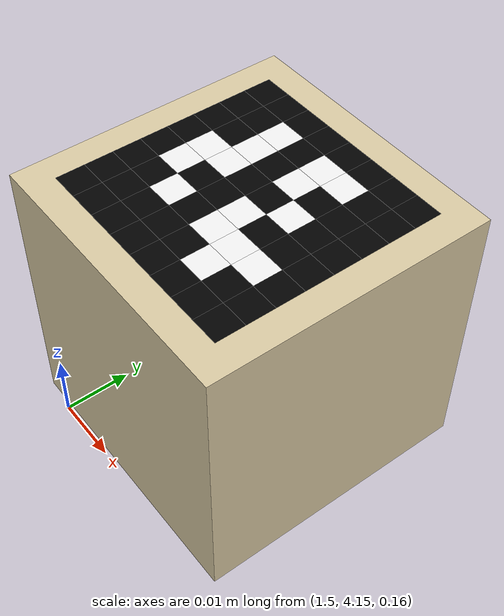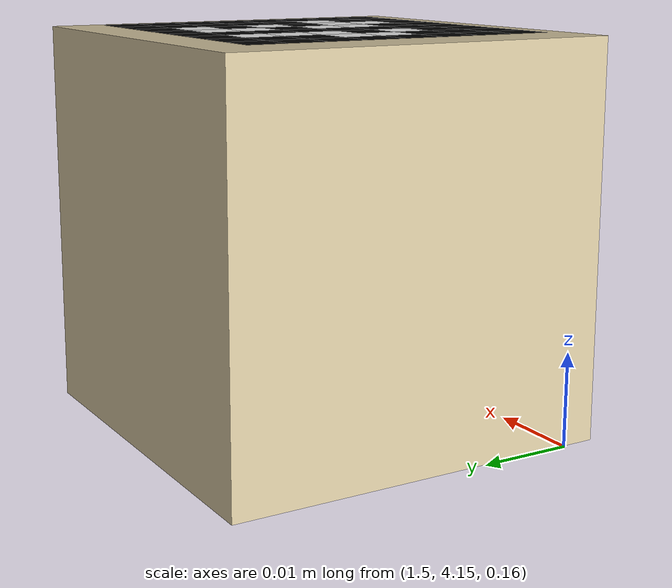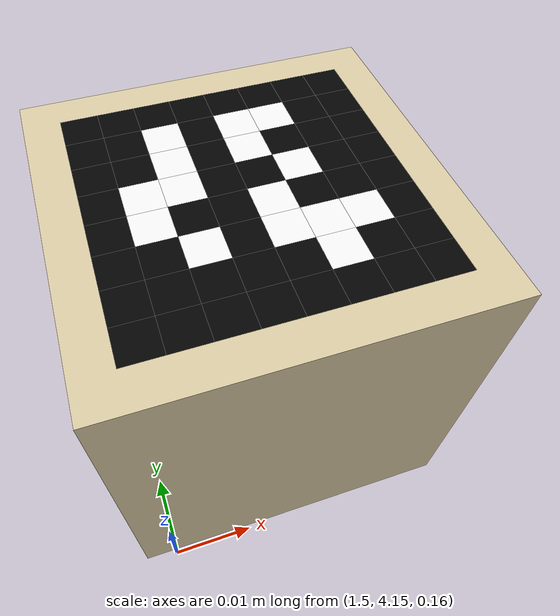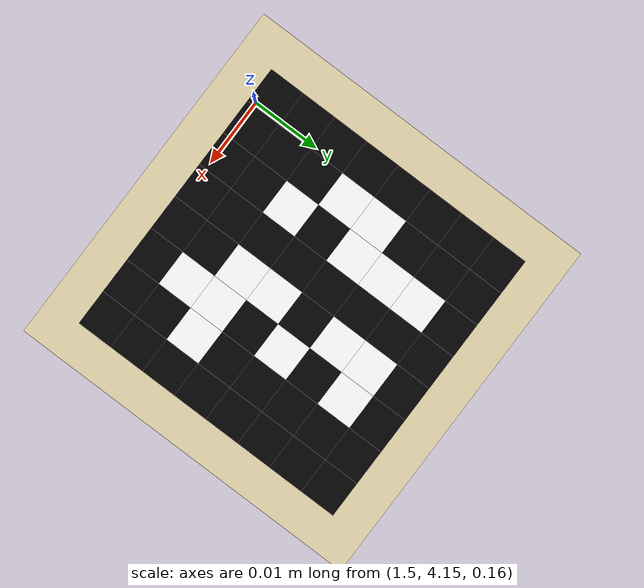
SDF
<sdf version="1.9">
 <world name="arena">
  <model name="cube_12">
   <pose>1.51626 4.16994 0.18200 0 0 0</pose>
   <link name="body">
    <inertial>
     <mass>0.04</mass>
     <inertia>
      <ixx>0.000010667</ixx>
      <iyy>0.000010667</iyy>
      <izz>0.000010667</izz>
      <ixy>0</ixy>
      <ixz>0</ixz>
      <iyz>0</iyz>
     </inertia>
    </inertial>
    <collision name="cube">
     <geometry><box><size>0.04 0.04 0.04</size></box></geometry>
     <surface><friction><ode><mu>1.2</mu><mu2>1.2</mu2></ode></friction></surface>
    </collision>
    <visual name="cube_appearance">
     <geometry><box><size>0.04 0.04 0.04</size></box></geometry>
     <material><ambient>0.85 0.79 0.64 1</ambient><diffuse>0.85 0.79 0.64 1</diffuse></material>
    </visual>
    <visual name="tag_0_0">
     <pose>-0.0140 0.0140 0.0202 0 0 0</pose>
     <geometry><plane><normal>0 0 1</normal><size>0.004 0.004</size></plane></geometry>
     <material><ambient>0.01 0.01 0.01 1</ambient><diffuse>0.01 0.01 0.01 1</diffuse></material>
    </visual>
    <visual name="tag_0_1">
     <pose>-0.0100 0.0140 0.0202 0 0 0</pose>
     <geometry><plane><normal>0 0 1</normal><size>0.004 0.004</size></plane></geometry>
     <material><ambient>0.01 0.01 0.01 1</ambient><diffuse>0.01 0.01 0.01 1</diffuse></material>
    </visual>
    <visual name="tag_0_2">
     <pose>-0.0060 0.0140 0.0202 0 0 0</pose>
     <geometry><plane><normal>0 0 1</normal><size>0.004 0.004</size></plane></geometry>
     <material><ambient>0.01 0.01 0.01 1</ambient><diffuse>0.01 0.01 0.01 1</diffuse></material>
    </visual>
    <visual name="tag_0_3">
     <pose>-0.0020 0.0140 0.0202 0 0 0</pose>
     <geometry><plane><normal>0 0 1</normal><size>0.004 0.004</size></plane></geometry>
     <material><ambient>0.01 0.01 0.01 1</ambient><diffuse>0.01 0.01 0.01 1</diffuse></material>
    </visual>
    <visual name="tag_0_4">
     <pose>0.0020 0.0140 0.0202 0 0 0</pose>
     <geometry><plane><normal>0 0 1</normal><size>0.004 0.004</size></plane></geometry>
     <material><ambient>0.01 0.01 0.01 1</ambient><diffuse>0.01 0.01 0.01 1</diffuse></material>
    </visual>
    <visual name="tag_0_5">
     <pose>0.0060 0.0140 0.0202 0 0 0</pose>
     <geometry><plane><normal>0 0 1</normal><size>0.004 0.004</size></plane></geometry>
     <material><ambient>0.01 0.01 0.01 1</ambient><diffuse>0.01 0.01 0.01 1</diffuse></material>
    </visual>
    <visual name="tag_0_6">
     <pose>0.0100 0.0140 0.0202 0 0 0</pose>
     <geometry><plane><normal>0 0 1</normal><size>0.004 0.004</size></plane></geometry>
     <material><ambient>0.01 0.01 0.01 1</ambient><diffuse>0.01 0.01 0.01 1</diffuse></material>
    </visual>
    <visual name="tag_0_7">
     <pose>0.0140 0.0140 0.0202 0 0 0</pose>
     <geometry><plane><normal>0 0 1</normal><size>0.004 0.004</size></plane></geometry>
     <material><ambient>0.01 0.01 0.01 1</ambient><diffuse>0.01 0.01 0.01 1</diffuse></material>
    </visual>
    <visual name="tag_1_0">
     <pose>-0.0140 0.0100 0.0202 0 0 0</pose>
     <geometry><plane><normal>0 0 1</normal><size>0.004 0.004</size></plane></geometry>
     <material><ambient>0.01 0.01 0.01 1</ambient><diffuse>0.01 0.01 0.01 1</diffuse></material>
    </visual>
    <visual name="tag_1_1">
     <pose>-0.0100 0.0100 0.0202 0 0 0</pose>
     <geometry><plane><normal>0 0 1</normal><size>0.004 0.004</size></plane></geometry>
     <material><ambient>0.01 0.01 0.01 1</ambient><diffuse>0.01 0.01 0.01 1</diffuse></material>
    </visual>
    <visual name="tag_1_2">
     <pose>-0.0060 0.0100 0.0202 0 0 0</pose>
     <geometry><plane><normal>0 0 1</normal><size>0.004 0.004</size></plane></geometry>
     <material><ambient>0.95 0.95 0.95 1</ambient><diffuse>0.95 0.95 0.95 1</diffuse></material>
    </visual>
    <visual name="tag_1_3">
     <pose>-0.0020 0.0100 0.0202 0 0 0</pose>
     <geometry><plane><normal>0 0 1</normal><size>0.004 0.004</size></plane></geometry>
     <material><ambient>0.01 0.01 0.01 1</ambient><diffuse>0.01 0.01 0.01 1</diffuse></material>
    </visual>
    <visual name="tag_1_4">
     <pose>0.0020 0.0100 0.0202 0 0 0</pose>
     <geometry><plane><normal>0 0 1</normal><size>0.004 0.004</size></plane></geometry>
     <material><ambient>0.95 0.95 0.95 1</ambient><diffuse>0.95 0.95 0.95 1</diffuse></material>
    </visual>
    <visual name="tag_1_5">
     <pose>0.0060 0.0100 0.0202 0 0 0</pose>
     <geometry><plane><normal>0 0 1</normal><size>0.004 0.004</size></plane></geometry>
     <material><ambient>0.95 0.95 0.95 1</ambient><diffuse>0.95 0.95 0.95 1</diffuse></material>
    </visual>
    <visual name="tag_1_6">
     <pose>0.0100 0.0100 0.0202 0 0 0</pose>
     <geometry><plane><normal>0 0 1</normal><size>0.004 0.004</size></plane></geometry>
     <material><ambient>0.01 0.01 0.01 1</ambient><diffuse>0.01 0.01 0.01 1</diffuse></material>
    </visual>
    <visual name="tag_1_7">
     <pose>0.0140 0.0100 0.0202 0 0 0</pose>
     <geometry><plane><normal>0 0 1</normal><size>0.004 0.004</size></plane></geometry>
     <material><ambient>0.01 0.01 0.01 1</ambient><diffuse>0.01 0.01 0.01 1</diffuse></material>
    </visual>
    <visual name="tag_2_0">
     <pose>-0.0140 0.0060 0.0202 0 0 0</pose>
     <geometry><plane><normal>0 0 1</normal><size>0.004 0.004</size></plane></geometry>
     <material><ambient>0.01 0.01 0.01 1</ambient><diffuse>0.01 0.01 0.01 1</diffuse></material>
    </visual>
    <visual name="tag_2_1">
     <pose>-0.0100 0.0060 0.0202 0 0 0</pose>
     <geometry><plane><normal>0 0 1</normal><size>0.004 0.004</size></plane></geometry>
     <material><ambient>0.01 0.01 0.01 1</ambient><diffuse>0.01 0.01 0.01 1</diffuse></material>
    </visual>
    <visual name="tag_2_2">
     <pose>-0.0060 0.0060 0.0202 0 0 0</pose>
     <geometry><plane><normal>0 0 1</normal><size>0.004 0.004</size></plane></geometry>
     <material><ambient>0.95 0.95 0.95 1</ambient><diffuse>0.95 0.95 0.95 1</diffuse></material>
    </visual>
    <visual name="tag_2_3">
     <pose>-0.0020 0.0060 0.0202 0 0 0</pose>
     <geometry><plane><normal>0 0 1</normal><size>0.004 0.004</size></plane></geometry>
     <material><ambient>0.01 0.01 0.01 1</ambient><diffuse>0.01 0.01 0.01 1</diffuse></material>
    </visual>
    <visual name="tag_2_4">
     <pose>0.0020 0.0060 0.0202 0 0 0</pose>
     <geometry><plane><normal>0 0 1</normal><size>0.004 0.004</size></plane></geometry>
     <material><ambient>0.95 0.95 0.95 1</ambient><diffuse>0.95 0.95 0.95 1</diffuse></material>
    </visual>
    <visual name="tag_2_5">
     <pose>0.0060 0.0060 0.0202 0 0 0</pose>
     <geometry><plane><normal>0 0 1</normal><size>0.004 0.004</size></plane></geometry>
     <material><ambient>0.01 0.01 0.01 1</ambient><diffuse>0.01 0.01 0.01 1</diffuse></material>
    </visual>
    <visual name="tag_2_6">
     <pose>0.0100 0.0060 0.0202 0 0 0</pose>
     <geometry><plane><normal>0 0 1</normal><size>0.004 0.004</size></plane></geometry>
     <material><ambient>0.01 0.01 0.01 1</ambient><diffuse>0.01 0.01 0.01 1</diffuse></material>
    </visual>
    <visual name="tag_2_7">
     <pose>0.0140 0.0060 0.0202 0 0 0</pose>
     <geometry><plane><normal>0 0 1</normal><size>0.004 0.004</size></plane></geometry>
     <material><ambient>0.01 0.01 0.01 1</ambient><diffuse>0.01 0.01 0.01 1</diffuse></material>
    </visual>
    <visual name="tag_3_0">
     <pose>-0.0140 0.0020 0.0202 0 0 0</pose>
     <geometry><plane><normal>0 0 1</normal><size>0.004 0.004</size></plane></geometry>
     <material><ambient>0.01 0.01 0.01 1</ambient><diffuse>0.01 0.01 0.01 1</diffuse></material>
    </visual>
    <visual name="tag_3_1">
     <pose>-0.0100 0.0020 0.0202 0 0 0</pose>
     <geometry><plane><normal>0 0 1</normal><size>0.004 0.004</size></plane></geometry>
     <material><ambient>0.95 0.95 0.95 1</ambient><diffuse>0.95 0.95 0.95 1</diffuse></material>
    </visual>
    <visual name="tag_3_2">
     <pose>-0.0060 0.0020 0.0202 0 0 0</pose>
     <geometry><plane><normal>0 0 1</normal><size>0.004 0.004</size></plane></geometry>
     <material><ambient>0.95 0.95 0.95 1</ambient><diffuse>0.95 0.95 0.95 1</diffuse></material>
    </visual>
    <visual name="tag_3_3">
     <pose>-0.0020 0.0020 0.0202 0 0 0</pose>
     <geometry><plane><normal>0 0 1</normal><size>0.004 0.004</size></plane></geometry>
     <material><ambient>0.01 0.01 0.01 1</ambient><diffuse>0.01 0.01 0.01 1</diffuse></material>
    </visual>
    <visual name="tag_3_4">
     <pose>0.0020 0.0020 0.0202 0 0 0</pose>
     <geometry><plane><normal>0 0 1</normal><size>0.004 0.004</size></plane></geometry>
     <material><ambient>0.01 0.01 0.01 1</ambient><diffuse>0.01 0.01 0.01 1</diffuse></material>
    </visual>
    <visual name="tag_3_5">
     <pose>0.0060 0.0020 0.0202 0 0 0</pose>
     <geometry><plane><normal>0 0 1</normal><size>0.004 0.004</size></plane></geometry>
     <material><ambient>0.95 0.95 0.95 1</ambient><diffuse>0.95 0.95 0.95 1</diffuse></material>
    </visual>
    <visual name="tag_3_6">
     <pose>0.0100 0.0020 0.0202 0 0 0</pose>
     <geometry><plane><normal>0 0 1</normal><size>0.004 0.004</size></plane></geometry>
     <material><ambient>0.01 0.01 0.01 1</ambient><diffuse>0.01 0.01 0.01 1</diffuse></material>
    </visual>
    <visual name="tag_3_7">
     <pose>0.0140 0.0020 0.0202 0 0 0</pose>
     <geometry><plane><normal>0 0 1</normal><size>0.004 0.004</size></plane></geometry>
     <material><ambient>0.01 0.01 0.01 1</ambient><diffuse>0.01 0.01 0.01 1</diffuse></material>
    </visual>
    <visual name="tag_4_0">
     <pose>-0.0140 -0.0020 0.0202 0 0 0</pose>
     <geometry><plane><normal>0 0 1</normal><size>0.004 0.004</size></plane></geometry>
     <material><ambient>0.01 0.01 0.01 1</ambient><diffuse>0.01 0.01 0.01 1</diffuse></material>
    </visual>
    <visual name="tag_4_1">
     <pose>-0.0100 -0.0020 0.0202 0 0 0</pose>
     <geometry><plane><normal>0 0 1</normal><size>0.004 0.004</size></plane></geometry>
     <material><ambient>0.95 0.95 0.95 1</ambient><diffuse>0.95 0.95 0.95 1</diffuse></material>
    </visual>
    <visual name="tag_4_2">
     <pose>-0.0060 -0.0020 0.0202 0 0 0</pose>
     <geometry><plane><normal>0 0 1</normal><size>0.004 0.004</size></plane></geometry>
     <material><ambient>0.01 0.01 0.01 1</ambient><diffuse>0.01 0.01 0.01 1</diffuse></material>
    </visual>
    <visual name="tag_4_3">
     <pose>-0.0020 -0.0020 0.0202 0 0 0</pose>
     <geometry><plane><normal>0 0 1</normal><size>0.004 0.004</size></plane></geometry>
     <material><ambient>0.01 0.01 0.01 1</ambient><diffuse>0.01 0.01 0.01 1</diffuse></material>
    </visual>
    <visual name="tag_4_4">
     <pose>0.0020 -0.0020 0.0202 0 0 0</pose>
     <geometry><plane><normal>0 0 1</normal><size>0.004 0.004</size></plane></geometry>
     <material><ambient>0.95 0.95 0.95 1</ambient><diffuse>0.95 0.95 0.95 1</diffuse></material>
    </visual>
    <visual name="tag_4_5">
     <pose>0.0060 -0.0020 0.0202 0 0 0</pose>
     <geometry><plane><normal>0 0 1</normal><size>0.004 0.004</size></plane></geometry>
     <material><ambient>0.01 0.01 0.01 1</ambient><diffuse>0.01 0.01 0.01 1</diffuse></material>
    </visual>
    <visual name="tag_4_6">
     <pose>0.0100 -0.0020 0.0202 0 0 0</pose>
     <geometry><plane><normal>0 0 1</normal><size>0.004 0.004</size></plane></geometry>
     <material><ambient>0.01 0.01 0.01 1</ambient><diffuse>0.01 0.01 0.01 1</diffuse></material>
    </visual>
    <visual name="tag_4_7">
     <pose>0.0140 -0.0020 0.0202 0 0 0</pose>
     <geometry><plane><normal>0 0 1</normal><size>0.004 0.004</size></plane></geometry>
     <material><ambient>0.01 0.01 0.01 1</ambient><diffuse>0.01 0.01 0.01 1</diffuse></material>
    </visual>
    <visual name="tag_5_0">
     <pose>-0.0140 -0.0060 0.0202 0 0 0</pose>
     <geometry><plane><normal>0 0 1</normal><size>0.004 0.004</size></plane></geometry>
     <material><ambient>0.01 0.01 0.01 1</ambient><diffuse>0.01 0.01 0.01 1</diffuse></material>
    </visual>
    <visual name="tag_5_1">
     <pose>-0.0100 -0.0060 0.0202 0 0 0</pose>
     <geometry><plane><normal>0 0 1</normal><size>0.004 0.004</size></plane></geometry>
     <material><ambient>0.01 0.01 0.01 1</ambient><diffuse>0.01 0.01 0.01 1</diffuse></material>
    </visual>
    <visual name="tag_5_2">
     <pose>-0.0060 -0.0060 0.0202 0 0 0</pose>
     <geometry><plane><normal>0 0 1</normal><size>0.004 0.004</size></plane></geometry>
     <material><ambient>0.95 0.95 0.95 1</ambient><diffuse>0.95 0.95 0.95 1</diffuse></material>
    </visual>
    <visual name="tag_5_3">
     <pose>-0.0020 -0.0060 0.0202 0 0 0</pose>
     <geometry><plane><normal>0 0 1</normal><size>0.004 0.004</size></plane></geometry>
     <material><ambient>0.01 0.01 0.01 1</ambient><diffuse>0.01 0.01 0.01 1</diffuse></material>
    </visual>
    <visual name="tag_5_4">
     <pose>0.0020 -0.0060 0.0202 0 0 0</pose>
     <geometry><plane><normal>0 0 1</normal><size>0.004 0.004</size></plane></geometry>
     <material><ambient>0.95 0.95 0.95 1</ambient><diffuse>0.95 0.95 0.95 1</diffuse></material>
    </visual>
    <visual name="tag_5_5">
     <pose>0.0060 -0.0060 0.0202 0 0 0</pose>
     <geometry><plane><normal>0 0 1</normal><size>0.004 0.004</size></plane></geometry>
     <material><ambient>0.95 0.95 0.95 1</ambient><diffuse>0.95 0.95 0.95 1</diffuse></material>
    </visual>
    <visual name="tag_5_6">
     <pose>0.0100 -0.0060 0.0202 0 0 0</pose>
     <geometry><plane><normal>0 0 1</normal><size>0.004 0.004</size></plane></geometry>
     <material><ambient>0.95 0.95 0.95 1</ambient><diffuse>0.95 0.95 0.95 1</diffuse></material>
    </visual>
    <visual name="tag_5_7">
     <pose>0.0140 -0.0060 0.0202 0 0 0</pose>
     <geometry><plane><normal>0 0 1</normal><size>0.004 0.004</size></plane></geometry>
     <material><ambient>0.01 0.01 0.01 1</ambient><diffuse>0.01 0.01 0.01 1</diffuse></material>
    </visual>
    <visual name="tag_6_0">
     <pose>-0.0140 -0.0100 0.0202 0 0 0</pose>
     <geometry><plane><normal>0 0 1</normal><size>0.004 0.004</size></plane></geometry>
     <material><ambient>0.01 0.01 0.01 1</ambient><diffuse>0.01 0.01 0.01 1</diffuse></material>
    </visual>
    <visual name="tag_6_1">
     <pose>-0.0100 -0.0100 0.0202 0 0 0</pose>
     <geometry><plane><normal>0 0 1</normal><size>0.004 0.004</size></plane></geometry>
     <material><ambient>0.01 0.01 0.01 1</ambient><diffuse>0.01 0.01 0.01 1</diffuse></material>
    </visual>
    <visual name="tag_6_2">
     <pose>-0.0060 -0.0100 0.0202 0 0 0</pose>
     <geometry><plane><normal>0 0 1</normal><size>0.004 0.004</size></plane></geometry>
     <material><ambient>0.01 0.01 0.01 1</ambient><diffuse>0.01 0.01 0.01 1</diffuse></material>
    </visual>
    <visual name="tag_6_3">
     <pose>-0.0020 -0.0100 0.0202 0 0 0</pose>
     <geometry><plane><normal>0 0 1</normal><size>0.004 0.004</size></plane></geometry>
     <material><ambient>0.01 0.01 0.01 1</ambient><diffuse>0.01 0.01 0.01 1</diffuse></material>
    </visual>
    <visual name="tag_6_4">
     <pose>0.0020 -0.0100 0.0202 0 0 0</pose>
     <geometry><plane><normal>0 0 1</normal><size>0.004 0.004</size></plane></geometry>
     <material><ambient>0.01 0.01 0.01 1</ambient><diffuse>0.01 0.01 0.01 1</diffuse></material>
    </visual>
    <visual name="tag_6_5">
     <pose>0.0060 -0.0100 0.0202 0 0 0</pose>
     <geometry><plane><normal>0 0 1</normal><size>0.004 0.004</size></plane></geometry>
     <material><ambient>0.95 0.95 0.95 1</ambient><diffuse>0.95 0.95 0.95 1</diffuse></material>
    </visual>
    <visual name="tag_6_6">
     <pose>0.0100 -0.0100 0.0202 0 0 0</pose>
     <geometry><plane><normal>0 0 1</normal><size>0.004 0.004</size></plane></geometry>
     <material><ambient>0.01 0.01 0.01 1</ambient><diffuse>0.01 0.01 0.01 1</diffuse></material>
    </visual>
    <visual name="tag_6_7">
     <pose>0.0140 -0.0100 0.0202 0 0 0</pose>
     <geometry><plane><normal>0 0 1</normal><size>0.004 0.004</size></plane></geometry>
     <material><ambient>0.01 0.01 0.01 1</ambient><diffuse>0.01 0.01 0.01 1</diffuse></material>
    </visual>
    <visual name="tag_7_0">
     <pose>-0.0140 -0.0140 0.0202 0 0 0</pose>
     <geometry><plane><normal>0 0 1</normal><size>0.004 0.004</size></plane></geometry>
     <material><ambient>0.01 0.01 0.01 1</ambient><diffuse>0.01 0.01 0.01 1</diffuse></material>
    </visual>
    <visual name="tag_7_1">
     <pose>-0.0100 -0.0140 0.0202 0 0 0</pose>
     <geometry><plane><normal>0 0 1</normal><size>0.004 0.004</size></plane></geometry>
     <material><ambient>0.01 0.01 0.01 1</ambient><diffuse>0.01 0.01 0.01 1</diffuse></material>
    </visual>
    <visual name="tag_7_2">
     <pose>-0.0060 -0.0140 0.0202 0 0 0</pose>
     <geometry><plane><normal>0 0 1</normal><size>0.004 0.004</size></plane></geometry>
     <material><ambient>0.01 0.01 0.01 1</ambient><diffuse>0.01 0.01 0.01 1</diffuse></material>
    </visual>
    <visual name="tag_7_3">
     <pose>-0.0020 -0.0140 0.0202 0 0 0</pose>
     <geometry><plane><normal>0 0 1</normal><size>0.004 0.004</size></plane></geometry>
     <material><ambient>0.01 0.01 0.01 1</ambient><diffuse>0.01 0.01 0.01 1</diffuse></material>
    </visual>
    <visual name="tag_7_4">
     <pose>0.0020 -0.0140 0.0202 0 0 0</pose>
     <geometry><plane><normal>0 0 1</normal><size>0.004 0.004</size></plane></geometry>
     <material><ambient>0.01 0.01 0.01 1</ambient><diffuse>0.01 0.01 0.01 1</diffuse></material>
    </visual>
    <visual name="tag_7_5">
     <pose>0.0060 -0.0140 0.0202 0 0 0</pose>
     <geometry><plane><normal>0 0 1</normal><size>0.004 0.004</size></plane></geometry>
     <material><ambient>0.01 0.01 0.01 1</ambient><diffuse>0.01 0.01 0.01 1</diffuse></material>
    </visual>
    <visual name="tag_7_6">
     <pose>0.0100 -0.0140 0.0202 0 0 0</pose>
     <geometry><plane><normal>0 0 1</normal><size>0.004 0.004</size></plane></geometry>
     <material><ambient>0.01 0.01 0.01 1</ambient><diffuse>0.01 0.01 0.01 1</diffuse></material>
    </visual>
    <visual name="tag_7_7">
     <pose>0.0140 -0.0140 0.0202 0 0 0</pose>
     <geometry><plane><normal>0 0 1</normal><size>0.004 0.004</size></plane></geometry>
     <material><ambient>0.01 0.01 0.01 1</ambient><diffuse>0.01 0.01 0.01 1</diffuse></material>
    </visual>
   </link>
  </model>
 </world>
</sdf>
